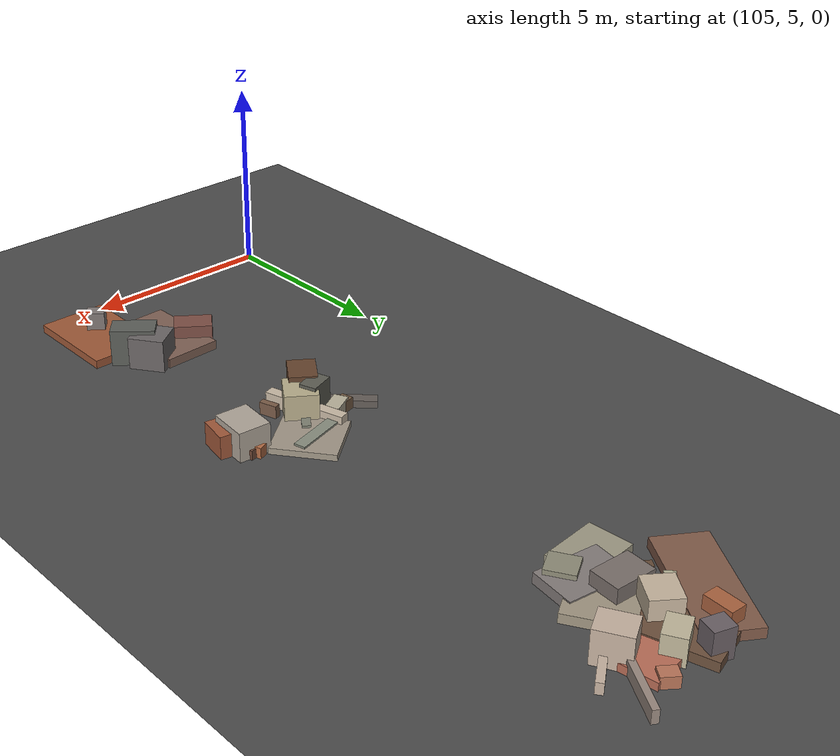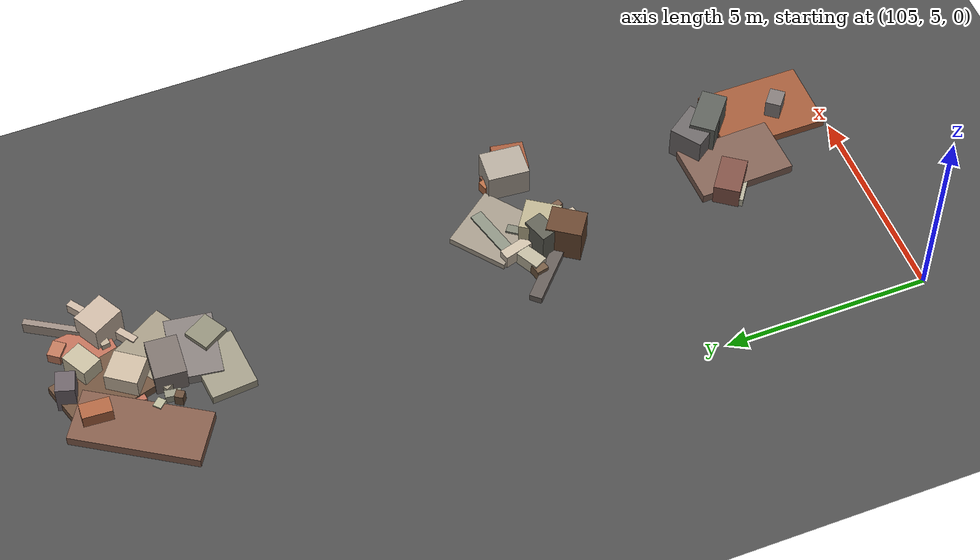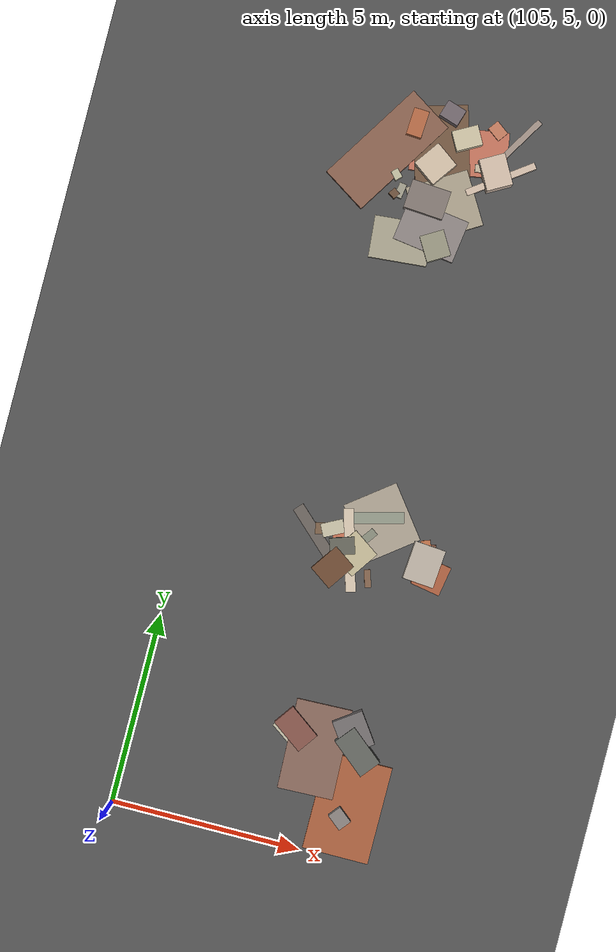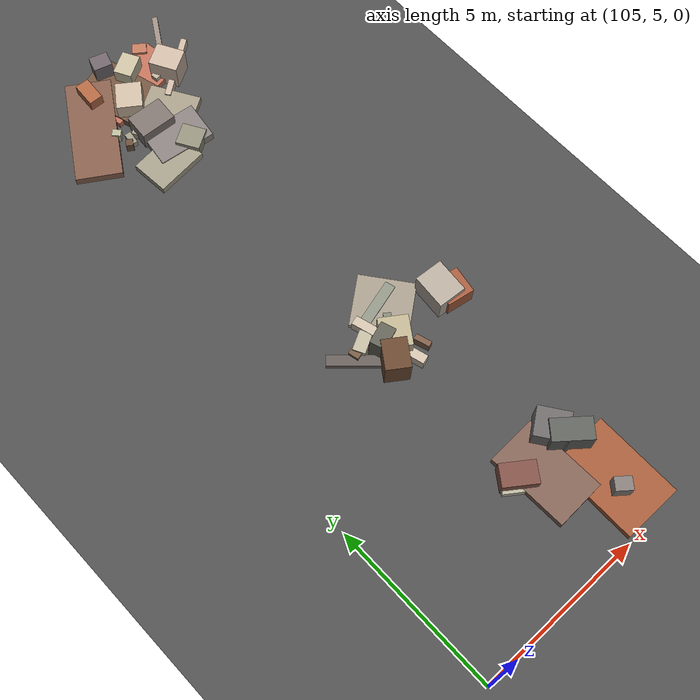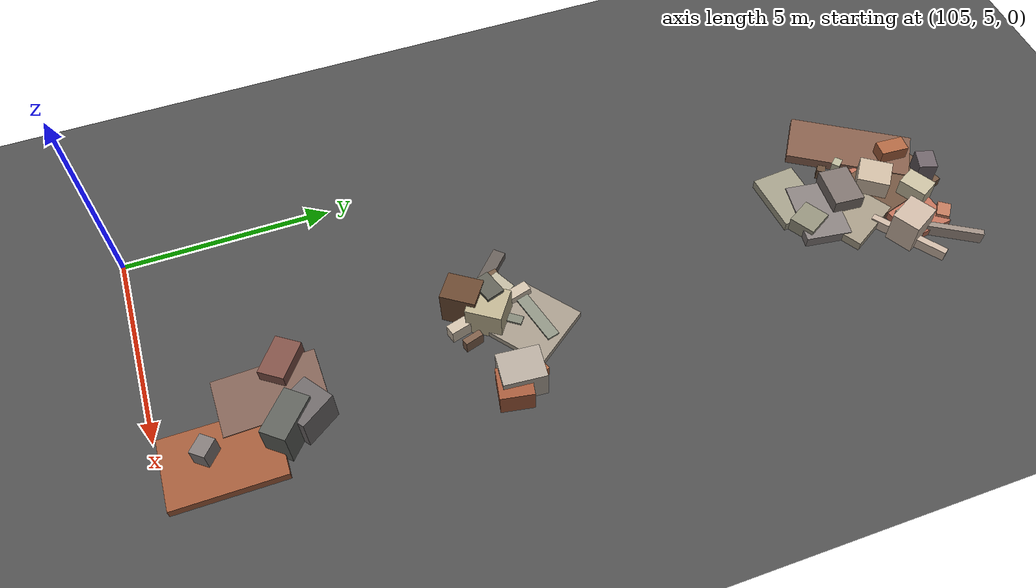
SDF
<sdf version="1.6">
 <world name="navitas_arena">
  <model name="ground_plane">
   <static>true</static>
   <link name="link">
    <collision name="collision">
     <geometry><plane><normal>0 0 1</normal><size>400 400</size></plane></geometry>
     <surface><friction><ode><mu>0.800</mu><mu2>0.800</mu2></ode></friction></surface>
    </collision>
    <visual name="visual">
     <cast_shadows>false</cast_shadows>
     <geometry><plane><normal>0 0 1</normal><size>400 400</size></plane></geometry>
     <material>
      <specular>0.04 0.04 0.04 1</specular>
      <script>
       <uri>file://media/materials/scripts/navitas_asphalt.material</uri>
       <name>Navitas/RealArenaAsphalt</name>
      </script>
     </material>
    </visual>
   </link>
  </model>
  <model name="deb_zor_72">
   <static>true</static>
   <pose>110.538 7.057 0.000 0 0 0</pose>
   <link name="link">
    <collision name="col_0">
     <pose>-0.788 0.593 0.119 0.000 0.000 1.600</pose>
     <geometry><box><size>2.364 1.468 0.238</size></box></geometry>
    </collision>
    <visual name="vis_0">
     <pose>-0.788 0.593 0.119 0.000 0.000 1.600</pose>
     <geometry><box><size>2.364 1.468 0.238</size></box></geometry>
     <material>
      <ambient>0.47 0.35 0.31 1</ambient>
      <diffuse>0.50 0.38 0.33 1</diffuse>
      <specular>0.05 0.05 0.045 1</specular>
     </material>
    </visual>
    <collision name="col_1">
     <pose>0.408 -0.671 0.108 0.000 0.000 1.568</pose>
     <geometry><box><size>2.564 1.744 0.215</size></box></geometry>
    </collision>
    <visual name="vis_1">
     <pose>0.408 -0.671 0.108 0.000 0.000 1.568</pose>
     <geometry><box><size>2.564 1.744 0.215</size></box></geometry>
     <material>
      <ambient>0.57 0.32 0.21 1</ambient>
      <diffuse>0.62 0.35 0.22 1</diffuse>
      <specular>0.05 0.05 0.045 1</specular>
     </material>
    </visual>
    <collision name="col_2">
     <pose>0.061 1.279 0.424 0.000 0.000 2.186</pose>
     <geometry><box><size>0.920 0.822 0.848</size></box></geometry>
    </collision>
    <visual name="vis_2">
     <pose>0.061 1.279 0.424 0.000 0.000 2.186</pose>
     <geometry><box><size>0.920 0.822 0.848</size></box></geometry>
     <material>
      <ambient>0.39 0.37 0.37 1</ambient>
      <diffuse>0.42 0.40 0.40 1</diffuse>
      <specular>0.05 0.05 0.045 1</specular>
     </material>
    </visual>
    <collision name="col_3">
     <pose>0.279 0.843 0.477 0.000 0.000 2.446</pose>
     <geometry><box><size>1.119 0.619 0.954</size></box></geometry>
    </collision>
    <visual name="vis_3">
     <pose>0.279 0.843 0.477 0.000 0.000 2.446</pose>
     <geometry><box><size>1.119 0.619 0.954</size></box></geometry>
     <material>
      <ambient>0.34 0.34 0.32 1</ambient>
      <diffuse>0.36 0.37 0.35 1</diffuse>
      <specular>0.05 0.05 0.045 1</specular>
     </material>
    </visual>
    <collision name="col_4">
     <pose>0.271 -0.952 0.345 0.000 0.000 2.455</pose>
     <geometry><box><size>0.468 0.374 0.690</size></box></geometry>
    </collision>
    <visual name="vis_4">
     <pose>0.271 -0.952 0.345 0.000 0.000 2.455</pose>
     <geometry><box><size>0.468 0.374 0.690</size></box></geometry>
     <material>
      <ambient>0.46 0.43 0.43 1</ambient>
      <diffuse>0.50 0.47 0.46 1</diffuse>
      <specular>0.05 0.05 0.045 1</specular>
     </material>
    </visual>
    <collision name="col_5">
     <pose>-0.998 0.720 0.102 0.000 0.000 3.905</pose>
     <geometry><box><size>0.465 0.366 0.205</size></box></geometry>
    </collision>
    <visual name="vis_5">
     <pose>-0.998 0.720 0.102 0.000 0.000 3.905</pose>
     <geometry><box><size>0.465 0.366 0.205</size></box></geometry>
     <material>
      <ambient>0.42 0.42 0.42 1</ambient>
      <diffuse>0.46 0.45 0.46 1</diffuse>
      <specular>0.05 0.05 0.045 1</specular>
     </material>
    </visual>
   </link>
  </model>
  <model name="deb_zor_78">
   <static>true</static>
   <pose>108.709 23.801 0.000 0 0 0</pose>
   <link name="link">
    <collision name="col_0">
     <pose>0.781 -0.220 0.100 0.000 0.000 0.144</pose>
     <geometry><box><size>2.514 1.213 0.199</size></box></geometry>
    </collision>
    <visual name="vis_0">
     <pose>0.781 -0.220 0.100 0.000 0.000 0.144</pose>
     <geometry><box><size>2.514 1.213 0.199</size></box></geometry>
     <material>
      <ambient>0.67 0.40 0.32 1</ambient>
      <diffuse>0.73 0.43 0.34 1</diffuse>
      <specular>0.05 0.05 0.045 1</specular>
     </material>
    </visual>
    <collision name="col_1">
     <pose>0.361 -0.406 0.118 0.000 0.000 1.848</pose>
     <geometry><box><size>2.519 1.430 0.236</size></box></geometry>
    </collision>
    <visual name="vis_1">
     <pose>0.361 -0.406 0.118 0.000 0.000 1.848</pose>
     <geometry><box><size>2.519 1.430 0.236</size></box></geometry>
     <material>
      <ambient>0.40 0.30 0.22 1</ambient>
      <diffuse>0.43 0.32 0.24 1</diffuse>
      <specular>0.05 0.05 0.045 1</specular>
     </material>
    </visual>
    <collision name="col_2">
     <pose>0.267 -0.738 0.365 0.000 0.000 2.516</pose>
     <geometry><box><size>0.734 0.796 0.730</size></box></geometry>
    </collision>
    <visual name="vis_2">
     <pose>0.267 -0.738 0.365 0.000 0.000 2.516</pose>
     <geometry><box><size>0.734 0.796 0.730</size></box></geometry>
     <material>
      <ambient>0.72 0.66 0.57 1</ambient>
      <diffuse>0.78 0.71 0.62 1</diffuse>
      <specular>0.05 0.05 0.045 1</specular>
     </material>
    </visual>
    <collision name="col_3">
     <pose>0.370 0.639 0.387 0.000 0.000 1.261</pose>
     <geometry><box><size>0.452 0.534 0.773</size></box></geometry>
    </collision>
    <visual name="vis_3">
     <pose>0.370 0.639 0.387 0.000 0.000 1.261</pose>
     <geometry><box><size>0.452 0.534 0.773</size></box></geometry>
     <material>
      <ambient>0.39 0.36 0.37 1</ambient>
      <diffuse>0.42 0.38 0.40 1</diffuse>
      <specular>0.05 0.05 0.045 1</specular>
     </material>
    </visual>
    <collision name="col_4">
     <pose>-0.446 0.188 0.299 0.000 0.000 1.508</pose>
     <geometry><box><size>0.711 0.404 0.598</size></box></geometry>
    </collision>
    <visual name="vis_4">
     <pose>-0.446 0.188 0.299 0.000 0.000 1.508</pose>
     <geometry><box><size>0.711 0.404 0.598</size></box></geometry>
     <material>
      <ambient>0.62 0.36 0.24 1</ambient>
      <diffuse>0.67 0.39 0.25 1</diffuse>
      <specular>0.05 0.05 0.045 1</specular>
     </material>
    </visual>
   </link>
  </model>
  <model name="deb_zor_95">
   <static>true</static>
   <pose>109.619 7.986 0.000 0 0 0</pose>
   <link name="link">
    <collision name="col_0">
     <pose>0.586 -0.009 0.097 0.000 0.000 2.241</pose>
     <geometry><box><size>0.241 0.417 0.193</size></box></geometry>
    </collision>
    <visual name="vis_0">
     <pose>0.586 -0.009 0.097 0.000 0.000 2.241</pose>
     <geometry><box><size>0.241 0.417 0.193</size></box></geometry>
     <material>
      <ambient>0.53 0.50 0.49 1</ambient>
      <diffuse>0.57 0.54 0.53 1</diffuse>
      <specular>0.05 0.05 0.045 1</specular>
     </material>
    </visual>
    <collision name="col_1">
     <pose>-0.654 0.141 0.067 0.000 0.000 2.671</pose>
     <geometry><box><size>0.422 0.359 0.133</size></box></geometry>
    </collision>
    <visual name="vis_1">
     <pose>-0.654 0.141 0.067 0.000 0.000 2.671</pose>
     <geometry><box><size>0.422 0.359 0.133</size></box></geometry>
     <material>
      <ambient>0.73 0.67 0.62 1</ambient>
      <diffuse>0.79 0.73 0.67 1</diffuse>
      <specular>0.05 0.05 0.045 1</specular>
     </material>
    </visual>
    <collision name="col_2">
     <pose>-0.018 -0.482 0.079 0.000 0.000 2.024</pose>
     <geometry><box><size>1.283 0.281 0.157</size></box></geometry>
    </collision>
    <visual name="vis_2">
     <pose>-0.018 -0.482 0.079 0.000 0.000 2.024</pose>
     <geometry><box><size>1.283 0.281 0.157</size></box></geometry>
     <material>
      <ambient>0.56 0.32 0.19 1</ambient>
      <diffuse>0.61 0.35 0.20 1</diffuse>
      <specular>0.05 0.05 0.045 1</specular>
     </material>
    </visual>
    <collision name="col_3">
     <pose>-0.242 -0.452 0.114 0.000 0.000 2.522</pose>
     <geometry><box><size>1.894 0.241 0.228</size></box></geometry>
    </collision>
    <visual name="vis_3">
     <pose>-0.242 -0.452 0.114 0.000 0.000 2.522</pose>
     <geometry><box><size>1.894 0.241 0.228</size></box></geometry>
     <material>
      <ambient>0.65 0.63 0.56 1</ambient>
      <diffuse>0.70 0.68 0.60 1</diffuse>
      <specular>0.05 0.05 0.045 1</specular>
     </material>
    </visual>
    <collision name="col_4">
     <pose>-0.480 0.064 0.280 0.000 0.000 2.514</pose>
     <geometry><box><size>0.977 0.632 0.559</size></box></geometry>
    </collision>
    <visual name="vis_4">
     <pose>-0.480 0.064 0.280 0.000 0.000 2.514</pose>
     <geometry><box><size>0.977 0.632 0.559</size></box></geometry>
     <material>
      <ambient>0.46 0.29 0.25 1</ambient>
      <diffuse>0.49 0.31 0.27 1</diffuse>
      <specular>0.05 0.05 0.045 1</specular>
     </material>
    </visual>
    <collision name="col_5">
     <pose>-0.368 0.431 0.112 0.000 0.000 2.716</pose>
     <geometry><box><size>0.445 0.391 0.224</size></box></geometry>
    </collision>
    <visual name="vis_5">
     <pose>-0.368 0.431 0.112 0.000 0.000 2.716</pose>
     <geometry><box><size>0.445 0.391 0.224</size></box></geometry>
     <material>
      <ambient>0.30 0.29 0.28 1</ambient>
      <diffuse>0.32 0.32 0.31 1</diffuse>
      <specular>0.05 0.05 0.045 1</specular>
     </material>
    </visual>
    <collision name="col_6">
     <pose>0.640 -0.083 0.083 0.000 0.000 2.662</pose>
     <geometry><box><size>0.249 0.442 0.166</size></box></geometry>
    </collision>
    <visual name="vis_6">
     <pose>0.640 -0.083 0.083 0.000 0.000 2.662</pose>
     <geometry><box><size>0.249 0.442 0.166</size></box></geometry>
     <material>
      <ambient>0.64 0.39 0.26 1</ambient>
      <diffuse>0.69 0.42 0.28 1</diffuse>
      <specular>0.05 0.05 0.045 1</specular>
     </material>
    </visual>
   </link>
  </model>
  <model name="deb_zor_111">
   <static>true</static>
   <pose>110.348 23.745 0.000 0 0 0</pose>
   <link name="link">
    <collision name="col_0">
     <pose>-0.749 0.173 0.337 0.000 0.000 2.071</pose>
     <geometry><box><size>0.528 0.697 0.674</size></box></geometry>
    </collision>
    <visual name="vis_0">
     <pose>-0.749 0.173 0.337 0.000 0.000 2.071</pose>
     <geometry><box><size>0.528 0.697 0.674</size></box></geometry>
     <material>
      <ambient>0.70 0.66 0.57 1</ambient>
      <diffuse>0.76 0.72 0.61 1</diffuse>
      <specular>0.05 0.05 0.045 1</specular>
     </material>
    </visual>
    <collision name="col_1">
     <pose>-0.218 -0.472 0.175 0.000 0.000 1.714</pose>
     <geometry><box><size>0.204 0.276 0.350</size></box></geometry>
    </collision>
    <visual name="vis_1">
     <pose>-0.218 -0.472 0.175 0.000 0.000 1.714</pose>
     <geometry><box><size>0.204 0.276 0.350</size></box></geometry>
     <material>
      <ambient>0.68 0.62 0.54 1</ambient>
      <diffuse>0.73 0.67 0.58 1</diffuse>
      <specular>0.05 0.05 0.045 1</specular>
     </material>
    </visual>
    <collision name="col_2">
     <pose>0.483 0.281 0.163 0.000 0.000 1.019</pose>
     <geometry><box><size>1.903 0.155 0.327</size></box></geometry>
    </collision>
    <visual name="vis_2">
     <pose>0.483 0.281 0.163 0.000 0.000 1.019</pose>
     <geometry><box><size>1.903 0.155 0.327</size></box></geometry>
     <material>
      <ambient>0.55 0.50 0.47 1</ambient>
      <diffuse>0.60 0.54 0.50 1</diffuse>
      <specular>0.05 0.05 0.045 1</specular>
     </material>
    </visual>
    <collision name="col_3">
     <pose>0.182 -0.507 0.416 0.000 0.000 2.076</pose>
     <geometry><box><size>0.832 0.688 0.833</size></box></geometry>
    </collision>
    <visual name="vis_3">
     <pose>0.182 -0.507 0.416 0.000 0.000 2.076</pose>
     <geometry><box><size>0.832 0.688 0.833</size></box></geometry>
     <material>
      <ambient>0.72 0.65 0.58 1</ambient>
      <diffuse>0.78 0.70 0.63 1</diffuse>
      <specular>0.05 0.05 0.045 1</specular>
     </material>
    </visual>
    <collision name="col_4">
     <pose>0.363 -0.602 0.140 0.000 0.000 0.625</pose>
     <geometry><box><size>1.926 0.174 0.280</size></box></geometry>
    </collision>
    <visual name="vis_4">
     <pose>0.363 -0.602 0.140 0.000 0.000 0.625</pose>
     <geometry><box><size>1.926 0.174 0.280</size></box></geometry>
     <material>
      <ambient>0.72 0.65 0.58 1</ambient>
      <diffuse>0.78 0.70 0.63 1</diffuse>
      <specular>0.05 0.05 0.045 1</specular>
     </material>
    </visual>
    <collision name="col_5">
     <pose>-0.015 0.588 0.143 0.000 0.000 -0.642</pose>
     <geometry><box><size>0.413 0.317 0.287</size></box></geometry>
    </collision>
    <visual name="vis_5">
     <pose>-0.015 0.588 0.143 0.000 0.000 -0.642</pose>
     <geometry><box><size>0.413 0.317 0.287</size></box></geometry>
     <material>
      <ambient>0.67 0.43 0.32 1</ambient>
      <diffuse>0.73 0.46 0.35 1</diffuse>
      <specular>0.05 0.05 0.045 1</specular>
     </material>
    </visual>
   </link>
  </model>
  <model name="deb_zor_165">
   <static>true</static>
   <pose>109.067 21.412 0.000 0 0 0</pose>
   <link name="link">
    <collision name="col_0">
     <pose>0.407 0.688 0.119 0.000 0.000 2.107</pose>
     <geometry><box><size>1.491 1.662 0.238</size></box></geometry>
    </collision>
    <visual name="vis_0">
     <pose>0.407 0.688 0.119 0.000 0.000 2.107</pose>
     <geometry><box><size>1.491 1.662 0.238</size></box></geometry>
     <material>
      <ambient>0.58 0.54 0.47 1</ambient>
      <diffuse>0.63 0.59 0.51 1</diffuse>
      <specular>0.05 0.05 0.045 1</specular>
     </material>
    </visual>
    <collision name="col_1">
     <pose>-0.469 -0.457 0.117 0.000 0.000 3.224</pose>
     <geometry><box><size>1.529 1.097 0.234</size></box></geometry>
    </collision>
    <visual name="vis_1">
     <pose>-0.469 -0.457 0.117 0.000 0.000 3.224</pose>
     <geometry><box><size>1.529 1.097 0.234</size></box></geometry>
     <material>
      <ambient>0.57 0.56 0.48 1</ambient>
      <diffuse>0.62 0.60 0.52 1</diffuse>
      <specular>0.05 0.05 0.045 1</specular>
     </material>
    </visual>
    <collision name="col_2">
     <pose>-0.069 0.720 0.306 0.000 0.000 3.067</pose>
     <geometry><box><size>1.050 0.754 0.612</size></box></geometry>
    </collision>
    <visual name="vis_2">
     <pose>-0.069 0.720 0.306 0.000 0.000 3.067</pose>
     <geometry><box><size>1.050 0.754 0.612</size></box></geometry>
     <material>
      <ambient>0.44 0.41 0.39 1</ambient>
      <diffuse>0.48 0.44 0.42 1</diffuse>
      <specular>0.05 0.05 0.045 1</specular>
     </material>
    </visual>
    <collision name="col_3">
     <pose>0.430 -0.375 0.198 0.000 0.000 2.102</pose>
     <geometry><box><size>0.697 0.646 0.395</size></box></geometry>
    </collision>
    <visual name="vis_3">
     <pose>0.430 -0.375 0.198 0.000 0.000 2.102</pose>
     <geometry><box><size>0.697 0.646 0.395</size></box></geometry>
     <material>
      <ambient>0.52 0.51 0.43 1</ambient>
      <diffuse>0.56 0.55 0.47 1</diffuse>
      <specular>0.05 0.05 0.045 1</specular>
     </material>
    </visual>
    <collision name="col_4">
     <pose>0.223 -0.004 0.136 0.000 0.000 3.000</pose>
     <geometry><box><size>1.657 1.131 0.272</size></box></geometry>
    </collision>
    <visual name="vis_4">
     <pose>0.223 -0.004 0.136 0.000 0.000 3.000</pose>
     <geometry><box><size>1.657 1.131 0.272</size></box></geometry>
     <material>
      <ambient>0.48 0.45 0.45 1</ambient>
      <diffuse>0.52 0.49 0.48 1</diffuse>
      <specular>0.05 0.05 0.045 1</specular>
     </material>
    </visual>
   </link>
  </model>
  <model name="deb_zor_172">
   <static>true</static>
   <pose>108.961 13.015 0.000 0 0 0</pose>
   <link name="link">
    <collision name="col_0">
     <pose>0.493 -0.200 0.405 0.000 0.000 0.964</pose>
     <geometry><box><size>0.861 0.827 0.811</size></box></geometry>
    </collision>
    <visual name="vis_0">
     <pose>0.493 -0.200 0.405 0.000 0.000 0.964</pose>
     <geometry><box><size>0.861 0.827 0.811</size></box></geometry>
     <material>
      <ambient>0.67 0.63 0.51 1</ambient>
      <diffuse>0.72 0.68 0.55 1</diffuse>
      <specular>0.05 0.05 0.045 1</specular>
     </material>
    </visual>
    <collision name="col_1">
     <pose>-0.553 -0.006 0.094 0.000 0.000 -0.751</pose>
     <geometry><box><size>1.787 0.308 0.187</size></box></geometry>
    </collision>
    <visual name="vis_1">
     <pose>-0.553 -0.006 0.094 0.000 0.000 -0.751</pose>
     <geometry><box><size>1.787 0.308 0.187</size></box></geometry>
     <material>
      <ambient>0.36 0.33 0.31 1</ambient>
      <diffuse>0.39 0.36 0.34 1</diffuse>
      <specular>0.05 0.05 0.045 1</specular>
     </material>
    </visual>
    <collision name="col_2">
     <pose>0.338 -0.261 0.109 0.000 0.000 0.936</pose>
     <geometry><box><size>1.841 0.216 0.219</size></box></geometry>
    </collision>
    <visual name="vis_2">
     <pose>0.338 -0.261 0.109 0.000 0.000 0.936</pose>
     <geometry><box><size>1.841 0.216 0.219</size></box></geometry>
     <material>
      <ambient>0.46 0.47 0.42 1</ambient>
      <diffuse>0.50 0.51 0.45 1</diffuse>
      <specular>0.05 0.05 0.045 1</specular>
     </material>
    </visual>
    <collision name="col_3">
     <pose>-0.192 0.290 0.177 0.000 0.000 0.474</pose>
     <geometry><box><size>0.596 0.360 0.353</size></box></geometry>
    </collision>
    <visual name="vis_3">
     <pose>-0.192 0.290 0.177 0.000 0.000 0.474</pose>
     <geometry><box><size>0.596 0.360 0.353</size></box></geometry>
     <material>
      <ambient>0.67 0.65 0.56 1</ambient>
      <diffuse>0.73 0.70 0.61 1</diffuse>
      <specular>0.05 0.05 0.045 1</specular>
     </material>
    </visual>
    <collision name="col_4">
     <pose>0.367 -0.156 0.180 0.000 0.000 1.848</pose>
     <geometry><box><size>2.165 0.264 0.359</size></box></geometry>
    </collision>
    <visual name="vis_4">
     <pose>0.367 -0.156 0.180 0.000 0.000 1.848</pose>
     <geometry><box><size>2.165 0.264 0.359</size></box></geometry>
     <material>
      <ambient>0.74 0.67 0.61 1</ambient>
      <diffuse>0.79 0.73 0.65 1</diffuse>
      <specular>0.05 0.05 0.045 1</specular>
     </material>
    </visual>
    <collision name="col_5">
     <pose>0.151 -0.092 0.448 0.000 0.000 0.320</pose>
     <geometry><box><size>0.647 0.448 0.895</size></box></geometry>
    </collision>
    <visual name="vis_5">
     <pose>0.151 -0.092 0.448 0.000 0.000 0.320</pose>
     <geometry><box><size>0.647 0.448 0.895</size></box></geometry>
     <material>
      <ambient>0.35 0.34 0.31 1</ambient>
      <diffuse>0.37 0.37 0.33 1</diffuse>
      <specular>0.05 0.05 0.045 1</specular>
     </material>
    </visual>
   </link>
  </model>
  <model name="deb_zor_304">
   <static>true</static>
   <pose>110.406 13.059 0.000 0 0 0</pose>
   <link name="link">
    <collision name="col_0">
     <pose>0.872 -0.069 0.381 0.000 0.000 1.486</pose>
     <geometry><box><size>1.008 0.826 0.762</size></box></geometry>
    </collision>
    <visual name="vis_0">
     <pose>0.872 -0.069 0.381 0.000 0.000 1.486</pose>
     <geometry><box><size>1.008 0.826 0.762</size></box></geometry>
     <material>
      <ambient>0.64 0.61 0.55 1</ambient>
      <diffuse>0.69 0.65 0.60 1</diffuse>
      <specular>0.05 0.05 0.045 1</specular>
     </material>
    </visual>
    <collision name="col_1">
     <pose>-0.446 -0.792 0.162 0.000 0.000 1.875</pose>
     <geometry><box><size>0.458 0.165 0.324</size></box></geometry>
    </collision>
    <visual name="vis_1">
     <pose>-0.446 -0.792 0.162 0.000 0.000 1.875</pose>
     <geometry><box><size>0.458 0.165 0.324</size></box></geometry>
     <material>
      <ambient>0.44 0.33 0.26 1</ambient>
      <diffuse>0.48 0.36 0.28 1</diffuse>
      <specular>0.05 0.05 0.045 1</specular>
     </material>
    </visual>
    <collision name="col_2">
     <pose>-0.627 0.782 0.105 0.000 0.000 3.397</pose>
     <geometry><box><size>1.465 0.299 0.211</size></box></geometry>
    </collision>
    <visual name="vis_2">
     <pose>-0.627 0.782 0.105 0.000 0.000 3.397</pose>
     <geometry><box><size>1.465 0.299 0.211</size></box></geometry>
     <material>
      <ambient>0.50 0.52 0.46 1</ambient>
      <diffuse>0.54 0.56 0.50 1</diffuse>
      <specular>0.05 0.05 0.045 1</specular>
     </material>
    </visual>
    <collision name="col_3">
     <pose>0.816 0.401 0.142 0.000 0.000 3.483</pose>
     <geometry><box><size>0.244 0.291 0.283</size></box></geometry>
    </collision>
    <visual name="vis_3">
     <pose>0.816 0.401 0.142 0.000 0.000 3.483</pose>
     <geometry><box><size>0.244 0.291 0.283</size></box></geometry>
     <material>
      <ambient>0.65 0.38 0.25 1</ambient>
      <diffuse>0.70 0.42 0.27 1</diffuse>
      <specular>0.05 0.05 0.045 1</specular>
     </material>
    </visual>
    <collision name="col_4">
     <pose>0.991 0.250 0.122 0.000 0.000 1.761</pose>
     <geometry><box><size>0.444 0.233 0.244</size></box></geometry>
    </collision>
    <visual name="vis_4">
     <pose>0.991 0.250 0.122 0.000 0.000 1.761</pose>
     <geometry><box><size>0.444 0.233 0.244</size></box></geometry>
     <material>
      <ambient>0.41 0.27 0.20 1</ambient>
      <diffuse>0.45 0.29 0.22 1</diffuse>
      <specular>0.05 0.05 0.045 1</specular>
     </material>
    </visual>
    <collision name="col_5">
     <pose>1.120 -0.306 0.297 0.000 0.000 1.395</pose>
     <geometry><box><size>0.782 0.787 0.594</size></box></geometry>
    </collision>
    <visual name="vis_5">
     <pose>1.120 -0.306 0.297 0.000 0.000 1.395</pose>
     <geometry><box><size>0.782 0.787 0.594</size></box></geometry>
     <material>
      <ambient>0.59 0.33 0.21 1</ambient>
      <diffuse>0.63 0.35 0.23 1</diffuse>
      <specular>0.05 0.05 0.045 1</specular>
     </material>
    </visual>
   </link>
  </model>
  <model name="deb_zor_339">
   <static>true</static>
   <pose>108.495 22.661 0.000 0 0 0</pose>
   <link name="link">
    <collision name="col_0">
     <pose>-0.365 -0.561 0.150 0.000 0.000 2.546</pose>
     <geometry><box><size>0.202 0.206 0.301</size></box></geometry>
    </collision>
    <visual name="vis_0">
     <pose>-0.365 -0.561 0.150 0.000 0.000 2.546</pose>
     <geometry><box><size>0.202 0.206 0.301</size></box></geometry>
     <material>
      <ambient>0.37 0.28 0.21 1</ambient>
      <diffuse>0.40 0.30 0.22 1</diffuse>
      <specular>0.05 0.05 0.045 1</specular>
     </material>
    </visual>
    <collision name="col_1">
     <pose>-0.819 0.491 0.128 0.000 0.000 1.000</pose>
     <geometry><box><size>3.082 1.315 0.256</size></box></geometry>
    </collision>
    <visual name="vis_1">
     <pose>-0.819 0.491 0.128 0.000 0.000 1.000</pose>
     <geometry><box><size>3.082 1.315 0.256</size></box></geometry>
     <material>
      <ambient>0.47 0.33 0.27 1</ambient>
      <diffuse>0.51 0.36 0.29 1</diffuse>
      <specular>0.05 0.05 0.045 1</specular>
     </material>
    </visual>
    <collision name="col_2">
     <pose>-0.427 -0.070 0.149 0.000 0.000 2.314</pose>
     <geometry><box><size>0.252 0.203 0.298</size></box></geometry>
    </collision>
    <visual name="vis_2">
     <pose>-0.427 -0.070 0.149 0.000 0.000 2.314</pose>
     <geometry><box><size>0.252 0.203 0.298</size></box></geometry>
     <material>
      <ambient>0.66 0.64 0.54 1</ambient>
      <diffuse>0.71 0.70 0.59 1</diffuse>
      <specular>0.05 0.05 0.045 1</specular>
     </material>
    </visual>
    <collision name="col_3">
     <pose>-0.225 -0.441 0.107 0.000 0.000 1.415</pose>
     <geometry><box><size>0.386 0.193 0.213</size></box></geometry>
    </collision>
    <visual name="vis_3">
     <pose>-0.225 -0.441 0.107 0.000 0.000 1.415</pose>
     <geometry><box><size>0.386 0.193 0.213</size></box></geometry>
     <material>
      <ambient>0.54 0.53 0.48 1</ambient>
      <diffuse>0.59 0.58 0.51 1</diffuse>
      <specular>0.05 0.05 0.045 1</specular>
     </material>
    </visual>
   </link>
  </model>
  <model name="deb_zor_373">
   <static>true</static>
   <pose>108.976 13.313 0.000 0 0 0</pose>
   <link name="link">
    <collision name="col_0">
     <pose>-0.514 -0.090 0.149 0.000 0.000 3.364</pose>
     <geometry><box><size>0.283 0.305 0.298</size></box></geometry>
    </collision>
    <visual name="vis_0">
     <pose>-0.514 -0.090 0.149 0.000 0.000 3.364</pose>
     <geometry><box><size>0.283 0.305 0.298</size></box></geometry>
     <material>
      <ambient>0.42 0.33 0.24 1</ambient>
      <diffuse>0.45 0.35 0.26 1</diffuse>
      <specular>0.05 0.05 0.045 1</specular>
     </material>
    </visual>
    <collision name="col_1">
     <pose>0.985 0.448 0.081 0.000 0.000 3.793</pose>
     <geometry><box><size>1.488 1.606 0.161</size></box></geometry>
    </collision>
    <visual name="vis_1">
     <pose>0.985 0.448 0.081 0.000 0.000 3.793</pose>
     <geometry><box><size>1.488 1.606 0.161</size></box></geometry>
     <material>
      <ambient>0.59 0.55 0.49 1</ambient>
      <diffuse>0.63 0.59 0.53 1</diffuse>
      <specular>0.05 0.05 0.045 1</specular>
     </material>
    </visual>
    <collision name="col_2">
     <pose>0.034 -0.979 0.468 0.000 0.000 2.531</pose>
     <geometry><box><size>0.696 0.850 0.937</size></box></geometry>
    </collision>
    <visual name="vis_2">
     <pose>0.034 -0.979 0.468 0.000 0.000 2.531</pose>
     <geometry><box><size>0.696 0.850 0.937</size></box></geometry>
     <material>
      <ambient>0.37 0.25 0.17 1</ambient>
      <diffuse>0.40 0.27 0.18 1</diffuse>
      <specular>0.05 0.05 0.045 1</specular>
     </material>
    </visual>
    <collision name="col_3">
     <pose>0.090 -0.992 0.123 0.000 0.000 1.517</pose>
     <geometry><box><size>0.246 0.458 0.246</size></box></geometry>
    </collision>
    <visual name="vis_3">
     <pose>0.090 -0.992 0.123 0.000 0.000 1.517</pose>
     <geometry><box><size>0.246 0.458 0.246</size></box></geometry>
     <material>
      <ambient>0.53 0.49 0.45 1</ambient>
      <diffuse>0.58 0.53 0.48 1</diffuse>
      <specular>0.05 0.05 0.045 1</specular>
     </material>
    </visual>
    <collision name="col_4">
     <pose>0.132 -0.291 0.079 0.000 0.000 2.029</pose>
     <geometry><box><size>0.514 0.460 0.158</size></box></geometry>
    </collision>
    <visual name="vis_4">
     <pose>0.132 -0.291 0.079 0.000 0.000 2.029</pose>
     <geometry><box><size>0.514 0.460 0.158</size></box></geometry>
     <material>
      <ambient>0.67 0.39 0.28 1</ambient>
      <diffuse>0.73 0.42 0.31 1</diffuse>
      <specular>0.05 0.05 0.045 1</specular>
     </material>
    </visual>
   </link>
  </model>
 </world>
</sdf>
